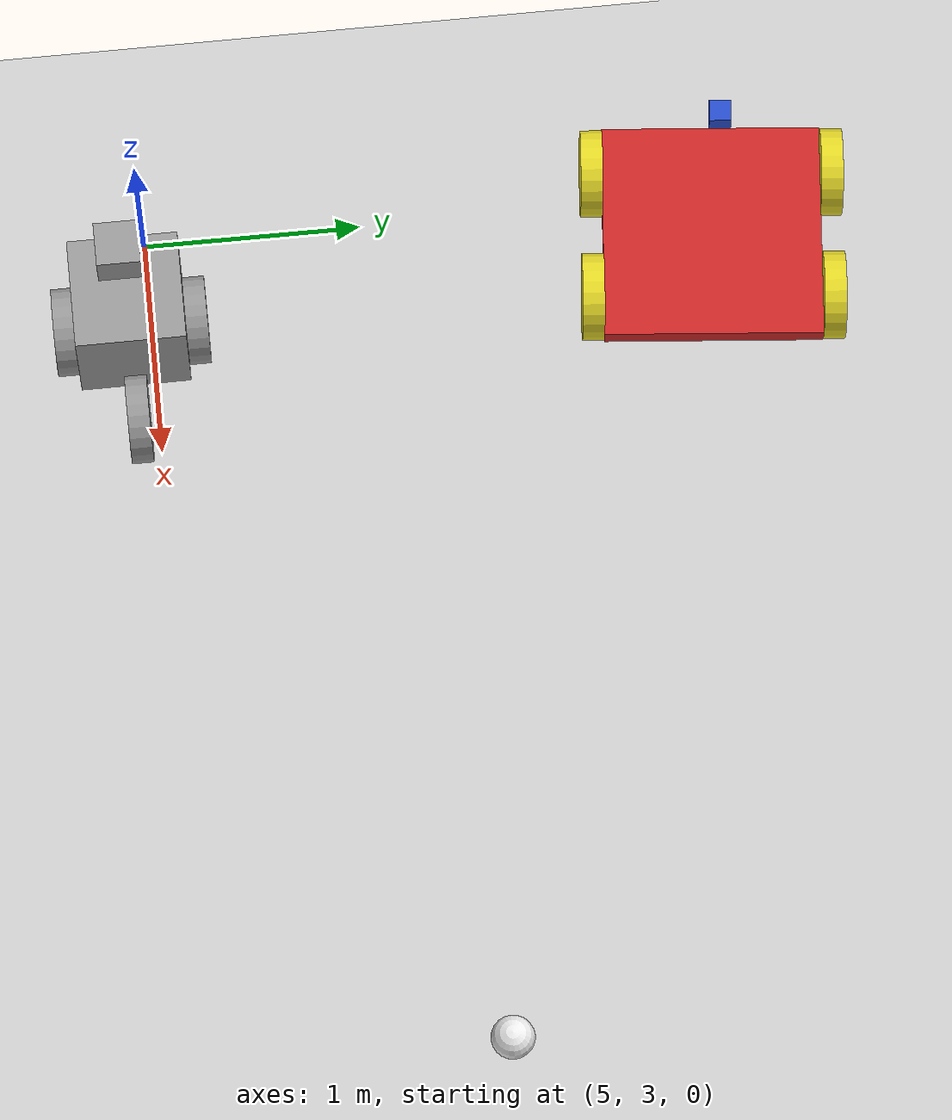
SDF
<sdf version="1.6">
 <world name="default">
  <model name="ground_plane">
   <static>1</static>
   <link name="link">
    <collision name="collision">
     <geometry><plane><normal>0 0 1</normal><size>100 100</size></plane></geometry>
     <surface>
      <contact><collide_bitmask>65535</collide_bitmask></contact>
      <friction><ode><mu>100</mu><mu2>50</mu2></ode></friction>
     </surface>
    </collision>
    <visual name="visual">
     <cast_shadows>0</cast_shadows>
     <geometry><plane><normal>0 0 1</normal><size>100 100</size></plane></geometry>
     <material>
      <script><uri>file://media/materials/scripts/gazebo.material</uri><name>Gazebo/Grey</name></script>
     </material>
    </visual>
   </link>
  </model>
  <model name="4wheelRobot">
   <link name="link_0">
    <pose>-0.091667 0.0075 -0.016667 0 -0 0</pose>
    <inertial>
     <mass>1</mass>
     <inertia>
      <ixx>0.166667</ixx>
      <ixy>0</ixy>
      <ixz>0</ixz>
      <iyy>0.166667</iyy>
      <iyz>0</iyz>
      <izz>0.166667</izz>
     </inertia>
    </inertial>
    <visual name="visual">
     <geometry><box><size>1 1 0.1</size></box></geometry>
     <material>
      <lighting>1</lighting>
      <script><uri>file://media/materials/scripts/gazebo.material</uri><name>Gazebo/Red</name></script>
      <shader type="pixel"><normal_map>__default__</normal_map></shader>
      <ambient>0.3 0.3 0.3 1</ambient>
      <diffuse>0.7 0.7 0.7 1</diffuse>
      <specular>0.01 0.01 0.01 1</specular>
      <emissive>0 0 0 1</emissive>
     </material>
    </visual>
    <collision name="collision">
     <geometry><box><size>1 1 0.1</size></box></geometry>
     <surface>
      <friction>
       <ode><mu>1</mu><mu2>1</mu2><fdir1>0 0 0</fdir1><slip1>0</slip1><slip2>0</slip2></ode>
       <torsional>
        <coefficient>1</coefficient>
        <patch_radius>0</patch_radius>
        <surface_radius>0</surface_radius>
        <use_patch_radius>1</use_patch_radius>
        <ode><slip>0</slip></ode>
       </torsional>
      </friction>
      <bounce><restitution_coefficient>0</restitution_coefficient><threshold>1e+06</threshold></bounce>
      <contact>
       <collide_without_contact>0</collide_without_contact>
       <collide_without_contact_bitmask>1</collide_without_contact_bitmask>
       <collide_bitmask>1</collide_bitmask>
       <ode>
        <soft_cfm>0</soft_cfm>
        <soft_erp>0.2</soft_erp>
        <kp>1e+13</kp>
        <kd>1</kd>
        <max_vel>0.01</max_vel>
        <min_depth>0</min_depth>
       </ode>
       <bullet>
        <split_impulse>1</split_impulse>
        <split_impulse_penetration_threshold>-0.01</split_impulse_penetration_threshold>
        <soft_cfm>0</soft_cfm>
        <soft_erp>0.2</soft_erp>
        <kp>1e+13</kp>
        <kd>1</kd>
       </bullet>
      </contact>
     </surface>
    </collision>
   </link>
   <link name="link_1">
    <pose>-0.391667 -0.542519 -0.016667 1.5707 -0 0</pose>
    <inertial>
     <mass>1</mass>
     <inertia><ixx>0.145833</ixx><ixy>0</ixy><ixz>0</ixz><iyy>0.145833</iyy><iyz>0</iyz><izz>0.125</izz></inertia>
    </inertial>
    <visual name="visual">
     <geometry><cylinder><radius>0.2</radius><length>0.1</length></cylinder></geometry>
     <material>
      <lighting>1</lighting>
      <script><uri>file://media/materials/scripts/gazebo.material</uri><name>Gazebo/Yellow</name></script>
      <shader type="pixel"><normal_map>__default__</normal_map></shader>
      <ambient>0.3 0.3 0.3 1</ambient>
      <diffuse>0.7 0.7 0.7 1</diffuse>
      <specular>0.01 0.01 0.01 1</specular>
      <emissive>0 0 0 1</emissive>
     </material>
    </visual>
    <collision name="collision">
     <geometry><cylinder><radius>0.2</radius><length>0.1</length></cylinder></geometry>
     <surface>
      <friction>
       <ode><mu>1</mu><mu2>1</mu2><fdir1>0 0 0</fdir1><slip1>0</slip1><slip2>0</slip2></ode>
       <torsional>
        <coefficient>1</coefficient>
        <patch_radius>0</patch_radius>
        <surface_radius>0</surface_radius>
        <use_patch_radius>1</use_patch_radius>
        <ode><slip>0</slip></ode>
       </torsional>
      </friction>
      <bounce><restitution_coefficient>0</restitution_coefficient><threshold>1e+06</threshold></bounce>
      <contact>
       <collide_without_contact>0</collide_without_contact>
       <collide_without_contact_bitmask>1</collide_without_contact_bitmask>
       <collide_bitmask>1</collide_bitmask>
       <ode>
        <soft_cfm>0</soft_cfm>
        <soft_erp>0.2</soft_erp>
        <kp>1e+13</kp>
        <kd>1</kd>
        <max_vel>0.01</max_vel>
        <min_depth>0</min_depth>
       </ode>
       <bullet>
        <split_impulse>1</split_impulse>
        <split_impulse_penetration_threshold>-0.01</split_impulse_penetration_threshold>
        <soft_cfm>0</soft_cfm>
        <soft_erp>0.2</soft_erp>
        <kp>1e+13</kp>
        <kd>1</kd>
       </bullet>
      </contact>
     </surface>
    </collision>
   </link>
   <link name="link_1_clone">
    <pose>-0.391667 0.557519 -0.016667 1.5707 -0 0</pose>
    <inertial>
     <mass>1</mass>
     <inertia><ixx>0.145833</ixx><ixy>0</ixy><ixz>0</ixz><iyy>0.145833</iyy><iyz>0</iyz><izz>0.125</izz></inertia>
    </inertial>
    <visual name="visual">
     <geometry><cylinder><radius>0.2</radius><length>0.1</length></cylinder></geometry>
     <material>
      <lighting>1</lighting>
      <script><uri>file://media/materials/scripts/gazebo.material</uri><name>Gazebo/Yellow</name></script>
      <shader type="pixel"><normal_map>__default__</normal_map></shader>
      <ambient>0.3 0.3 0.3 1</ambient>
      <diffuse>0.7 0.7 0.7 1</diffuse>
      <specular>0.01 0.01 0.01 1</specular>
      <emissive>0 0 0 1</emissive>
     </material>
    </visual>
    <collision name="collision">
     <geometry><cylinder><radius>0.2</radius><length>0.1</length></cylinder></geometry>
     <surface>
      <friction>
       <ode><mu>1</mu><mu2>1</mu2><fdir1>0 0 0</fdir1><slip1>0</slip1><slip2>0</slip2></ode>
       <torsional>
        <coefficient>1</coefficient>
        <patch_radius>0</patch_radius>
        <surface_radius>0</surface_radius>
        <use_patch_radius>1</use_patch_radius>
        <ode><slip>0</slip></ode>
       </torsional>
      </friction>
      <bounce><restitution_coefficient>0</restitution_coefficient><threshold>1e+06</threshold></bounce>
      <contact>
       <collide_without_contact>0</collide_without_contact>
       <collide_without_contact_bitmask>1</collide_without_contact_bitmask>
       <collide_bitmask>1</collide_bitmask>
       <ode>
        <soft_cfm>0</soft_cfm>
        <soft_erp>0.2</soft_erp>
        <kp>1e+13</kp>
        <kd>1</kd>
        <max_vel>0.01</max_vel>
        <min_depth>0</min_depth>
       </ode>
       <bullet>
        <split_impulse>1</split_impulse>
        <split_impulse_penetration_threshold>-0.01</split_impulse_penetration_threshold>
        <soft_cfm>0</soft_cfm>
        <soft_erp>0.2</soft_erp>
        <kp>1e+13</kp>
        <kd>1</kd>
       </bullet>
      </contact>
     </surface>
    </collision>
   </link>
   <link name="link_1_clone_0">
    <pose>0.208333 -0.542519 -0.016667 1.5707 -0 0</pose>
    <inertial>
     <mass>1</mass>
     <inertia><ixx>0.145833</ixx><ixy>0</ixy><ixz>0</ixz><iyy>0.145833</iyy><iyz>0</iyz><izz>0.125</izz></inertia>
    </inertial>
    <visual name="visual">
     <geometry><cylinder><radius>0.2</radius><length>0.1</length></cylinder></geometry>
     <material>
      <lighting>1</lighting>
      <script><uri>file://media/materials/scripts/gazebo.material</uri><name>Gazebo/Yellow</name></script>
      <shader type="pixel"><normal_map>__default__</normal_map></shader>
      <ambient>0.3 0.3 0.3 1</ambient>
      <diffuse>0.7 0.7 0.7 1</diffuse>
      <specular>0.01 0.01 0.01 1</specular>
      <emissive>0 0 0 1</emissive>
     </material>
    </visual>
    <collision name="collision">
     <geometry><cylinder><radius>0.2</radius><length>0.1</length></cylinder></geometry>
     <surface>
      <friction>
       <ode><mu>1</mu><mu2>1</mu2><fdir1>0 0 0</fdir1><slip1>0</slip1><slip2>0</slip2></ode>
       <torsional>
        <coefficient>1</coefficient>
        <patch_radius>0</patch_radius>
        <surface_radius>0</surface_radius>
        <use_patch_radius>1</use_patch_radius>
        <ode><slip>0</slip></ode>
       </torsional>
      </friction>
      <bounce><restitution_coefficient>0</restitution_coefficient><threshold>1e+06</threshold></bounce>
      <contact>
       <collide_without_contact>0</collide_without_contact>
       <collide_without_contact_bitmask>1</collide_without_contact_bitmask>
       <collide_bitmask>1</collide_bitmask>
       <ode>
        <soft_cfm>0</soft_cfm>
        <soft_erp>0.2</soft_erp>
        <kp>1e+13</kp>
        <kd>1</kd>
        <max_vel>0.01</max_vel>
        <min_depth>0</min_depth>
       </ode>
       <bullet>
        <split_impulse>1</split_impulse>
        <split_impulse_penetration_threshold>-0.01</split_impulse_penetration_threshold>
        <soft_cfm>0</soft_cfm>
        <soft_erp>0.2</soft_erp>
        <kp>1e+13</kp>
        <kd>1</kd>
       </bullet>
      </contact>
     </surface>
    </collision>
   </link>
   <link name="link_1_clone_1">
    <pose>0.208333 0.557519 -0.016667 1.5707 -0 0</pose>
    <inertial>
     <mass>1</mass>
     <inertia><ixx>0.145833</ixx><ixy>0</ixy><ixz>0</ixz><iyy>0.145833</iyy><iyz>0</iyz><izz>0.125</izz></inertia>
    </inertial>
    <visual name="visual">
     <geometry><cylinder><radius>0.2</radius><length>0.1</length></cylinder></geometry>
     <material>
      <lighting>1</lighting>
      <script><uri>file://media/materials/scripts/gazebo.material</uri><name>Gazebo/Yellow</name></script>
      <shader type="pixel"><normal_map>__default__</normal_map></shader>
      <ambient>0.3 0.3 0.3 1</ambient>
      <diffuse>0.7 0.7 0.7 1</diffuse>
      <specular>0.01 0.01 0.01 1</specular>
      <emissive>0 0 0 1</emissive>
     </material>
    </visual>
    <collision name="collision">
     <geometry><cylinder><radius>0.2</radius><length>0.1</length></cylinder></geometry>
     <surface>
      <friction>
       <ode><mu>1</mu><mu2>1</mu2><fdir1>0 0 0</fdir1><slip1>0</slip1><slip2>0</slip2></ode>
       <torsional>
        <coefficient>1</coefficient>
        <patch_radius>0</patch_radius>
        <surface_radius>0</surface_radius>
        <use_patch_radius>1</use_patch_radius>
        <ode><slip>0</slip></ode>
       </torsional>
      </friction>
      <bounce><restitution_coefficient>0</restitution_coefficient><threshold>1e+06</threshold></bounce>
      <contact>
       <collide_without_contact>0</collide_without_contact>
       <collide_without_contact_bitmask>1</collide_without_contact_bitmask>
       <collide_bitmask>1</collide_bitmask>
       <ode>
        <soft_cfm>0</soft_cfm>
        <soft_erp>0.2</soft_erp>
        <kp>1e+13</kp>
        <kd>1</kd>
        <max_vel>0.01</max_vel>
        <min_depth>0</min_depth>
       </ode>
       <bullet>
        <split_impulse>1</split_impulse>
        <split_impulse_penetration_threshold>-0.01</split_impulse_penetration_threshold>
        <soft_cfm>0</soft_cfm>
        <soft_erp>0.2</soft_erp>
        <kp>1e+13</kp>
        <kd>1</kd>
       </bullet>
      </contact>
     </surface>
    </collision>
   </link>
   <link name="link_2">
    <pose>0.458333 -0.0375 0.083333 0 -0 0</pose>
    <inertial>
     <mass>1</mass>
     <inertia>
      <ixx>0.166667</ixx>
      <ixy>0</ixy>
      <ixz>0</ixz>
      <iyy>0.166667</iyy>
      <iyz>0</iyz>
      <izz>0.166667</izz>
     </inertia>
    </inertial>
    <visual name="visual">
     <geometry><box><size>0.1 0.1 0.1</size></box></geometry>
     <material>
      <lighting>1</lighting>
      <script><uri>file://media/materials/scripts/gazebo.material</uri><name>Gazebo/Blue</name></script>
      <shader type="pixel"><normal_map>__default__</normal_map></shader>
      <ambient>0.3 0.3 0.3 1</ambient>
      <diffuse>0.7 0.7 0.7 1</diffuse>
      <specular>0.01 0.01 0.01 1</specular>
      <emissive>0 0 0 1</emissive>
     </material>
    </visual>
    <collision name="collision">
     <geometry><box><size>0.1 0.1 0.1</size></box></geometry>
     <surface>
      <friction>
       <ode><mu>1</mu><mu2>1</mu2><fdir1>0 0 0</fdir1><slip1>0</slip1><slip2>0</slip2></ode>
       <torsional>
        <coefficient>1</coefficient>
        <patch_radius>0</patch_radius>
        <surface_radius>0</surface_radius>
        <use_patch_radius>1</use_patch_radius>
        <ode><slip>0</slip></ode>
       </torsional>
      </friction>
      <bounce><restitution_coefficient>0</restitution_coefficient><threshold>1e+06</threshold></bounce>
      <contact>
       <collide_without_contact>0</collide_without_contact>
       <collide_without_contact_bitmask>1</collide_without_contact_bitmask>
       <collide_bitmask>1</collide_bitmask>
       <ode>
        <soft_cfm>0</soft_cfm>
        <soft_erp>0.2</soft_erp>
        <kp>1e+13</kp>
        <kd>1</kd>
        <max_vel>0.01</max_vel>
        <min_depth>0</min_depth>
       </ode>
       <bullet>
        <split_impulse>1</split_impulse>
        <split_impulse_penetration_threshold>-0.01</split_impulse_penetration_threshold>
        <soft_cfm>0</soft_cfm>
        <soft_erp>0.2</soft_erp>
        <kp>1e+13</kp>
        <kd>1</kd>
       </bullet>
      </contact>
     </surface>
    </collision>
   </link>
   <joint name="base2LFwheel" type="revolute">
    <parent>link_0</parent>
    <child>link_1</child>
    <axis>
     <xyz>0 0 1</xyz>
     <use_parent_model_frame>0</use_parent_model_frame>
     <limit>
      <lower>-1.79769e+308</lower>
      <upper>1.79769e+308</upper>
      <effort>-1</effort>
      <velocity>-1</velocity>
     </limit>
     <dynamics>
      <spring_reference>0</spring_reference>
      <spring_stiffness>0</spring_stiffness>
      <damping>0</damping>
      <friction>0</friction>
     </dynamics>
    </axis>
    <physics>
     <ode><limit><cfm>0</cfm><erp>0.2</erp></limit><suspension><cfm>0</cfm><erp>0.2</erp></suspension></ode>
    </physics>
   </joint>
   <joint name="base2RFwheel" type="revolute">
    <parent>link_0</parent>
    <child>link_1_clone</child>
    <axis>
     <xyz>0 0 1</xyz>
     <use_parent_model_frame>0</use_parent_model_frame>
     <limit>
      <lower>-1.79769e+308</lower>
      <upper>1.79769e+308</upper>
      <effort>-1</effort>
      <velocity>-1</velocity>
     </limit>
     <dynamics>
      <spring_reference>0</spring_reference>
      <spring_stiffness>0</spring_stiffness>
      <damping>0</damping>
      <friction>0</friction>
     </dynamics>
    </axis>
    <physics>
     <ode><limit><cfm>0</cfm><erp>0.2</erp></limit><suspension><cfm>0</cfm><erp>0.2</erp></suspension></ode>
    </physics>
   </joint>
   <joint name="base2LBwheel" type="revolute">
    <parent>link_0</parent>
    <child>link_1_clone_0</child>
    <axis>
     <xyz>0 0 1</xyz>
     <use_parent_model_frame>0</use_parent_model_frame>
     <limit>
      <lower>-1.79769e+308</lower>
      <upper>1.79769e+308</upper>
      <effort>-1</effort>
      <velocity>-1</velocity>
     </limit>
     <dynamics>
      <spring_reference>0</spring_reference>
      <spring_stiffness>0</spring_stiffness>
      <damping>0</damping>
      <friction>0</friction>
     </dynamics>
    </axis>
    <physics>
     <ode><limit><cfm>0</cfm><erp>0.2</erp></limit><suspension><cfm>0</cfm><erp>0.2</erp></suspension></ode>
    </physics>
   </joint>
   <joint name="base2RBwheel" type="revolute">
    <parent>link_0</parent>
    <child>link_1_clone_1</child>
    <axis>
     <xyz>0 0 1</xyz>
     <use_parent_model_frame>0</use_parent_model_frame>
     <limit>
      <lower>-1.79769e+308</lower>
      <upper>1.79769e+308</upper>
      <effort>-1</effort>
      <velocity>-1</velocity>
     </limit>
     <dynamics>
      <spring_reference>0</spring_reference>
      <spring_stiffness>0</spring_stiffness>
      <damping>0</damping>
      <friction>0</friction>
     </dynamics>
    </axis>
    <physics>
     <ode><limit><cfm>0</cfm><erp>0.2</erp></limit><suspension><cfm>0</cfm><erp>0.2</erp></suspension></ode>
    </physics>
   </joint>
   <joint name="link_0_JOINT_5" type="revolute">
    <parent>link_0</parent>
    <child>link_2</child>
    <axis>
     <xyz>1 0 0</xyz>
     <use_parent_model_frame>0</use_parent_model_frame>
     <limit>
      <lower>-1.79769e+308</lower>
      <upper>1.79769e+308</upper>
      <effort>-1</effort>
      <velocity>-1</velocity>
     </limit>
     <dynamics>
      <spring_reference>0</spring_reference>
      <spring_stiffness>0</spring_stiffness>
      <damping>0</damping>
     </dynamics>
    </axis>
    <physics>
     <ode><limit><cfm>0</cfm><erp>0.2</erp></limit><suspension><cfm>0</cfm><erp>0.2</erp></suspension></ode>
    </physics>
   </joint>
   <static>0</static>
   <pose>5.17324 5.61366 0.21667 0 -7e-06 3.05399</pose>
  </model>
  <model name="3wheelsRobot">
   <link name="link_2">
    <pose>-0.06 0.004 0.04 0 -0 0</pose>
    <inertial>
     <mass>1</mass>
     <inertia>
      <ixx>0.166667</ixx>
      <ixy>0</ixy>
      <ixz>0</ixz>
      <iyy>0.166667</iyy>
      <iyz>0</iyz>
      <izz>0.166667</izz>
     </inertia>
    </inertial>
    <visual name="visual">
     <geometry><box><size>0.5 0.5 0.6</size></box></geometry>
     <material>
      <lighting>1</lighting>
      <script><uri>file://media/materials/scripts/gazebo.material</uri><name>Gazebo/Grey</name></script>
      <shader type="pixel"><normal_map>__default__</normal_map></shader>
      <ambient>0.3 0.3 0.3 1</ambient>
      <diffuse>0.7 0.7 0.7 1</diffuse>
      <specular>0.01 0.01 0.01 1</specular>
      <emissive>0 0 0 1</emissive>
     </material>
    </visual>
    <collision name="collision">
     <geometry><box><size>0.5 0.5 0.6</size></box></geometry>
     <surface>
      <friction>
       <ode><mu>1</mu><mu2>1</mu2><fdir1>0 0 0</fdir1><slip1>0</slip1><slip2>0</slip2></ode>
       <torsional>
        <coefficient>1</coefficient>
        <patch_radius>0</patch_radius>
        <surface_radius>0</surface_radius>
        <use_patch_radius>1</use_patch_radius>
        <ode><slip>0</slip></ode>
       </torsional>
      </friction>
      <bounce><restitution_coefficient>0</restitution_coefficient><threshold>1e+06</threshold></bounce>
      <contact>
       <collide_without_contact>0</collide_without_contact>
       <collide_without_contact_bitmask>1</collide_without_contact_bitmask>
       <collide_bitmask>1</collide_bitmask>
       <ode>
        <soft_cfm>0</soft_cfm>
        <soft_erp>0.2</soft_erp>
        <kp>1e+13</kp>
        <kd>1</kd>
        <max_vel>0.01</max_vel>
        <min_depth>0</min_depth>
       </ode>
       <bullet>
        <split_impulse>1</split_impulse>
        <split_impulse_penetration_threshold>-0.01</split_impulse_penetration_threshold>
        <soft_cfm>0</soft_cfm>
        <soft_erp>0.2</soft_erp>
        <kp>1e+13</kp>
        <kd>1</kd>
       </bullet>
      </contact>
     </surface>
    </collision>
   </link>
   <link name="link_3">
    <pose>-0.06 -0.296019 -0.16 1.5707 -0 0</pose>
    <inertial>
     <mass>1</mass>
     <inertia><ixx>0.145833</ixx><ixy>0</ixy><ixz>0</ixz><iyy>0.145833</iyy><iyz>0</iyz><izz>0.125</izz></inertia>
    </inertial>
    <visual name="visual">
     <geometry><cylinder><radius>0.2</radius><length>0.1</length></cylinder></geometry>
     <material>
      <lighting>1</lighting>
      <script><uri>file://media/materials/scripts/gazebo.material</uri><name>Gazebo/Grey</name></script>
      <shader type="pixel"><normal_map>__default__</normal_map></shader>
      <ambient>0.3 0.3 0.3 1</ambient>
      <diffuse>0.7 0.7 0.7 1</diffuse>
      <specular>0.01 0.01 0.01 1</specular>
      <emissive>0 0 0 1</emissive>
     </material>
    </visual>
    <collision name="collision">
     <geometry><cylinder><radius>0.2</radius><length>0.1</length></cylinder></geometry>
     <surface>
      <friction>
       <ode><mu>1</mu><mu2>1</mu2><fdir1>0 0 0</fdir1><slip1>0</slip1><slip2>0</slip2></ode>
       <torsional>
        <coefficient>1</coefficient>
        <patch_radius>0</patch_radius>
        <surface_radius>0</surface_radius>
        <use_patch_radius>1</use_patch_radius>
        <ode><slip>0</slip></ode>
       </torsional>
      </friction>
      <bounce><restitution_coefficient>0</restitution_coefficient><threshold>1e+06</threshold></bounce>
      <contact>
       <collide_without_contact>0</collide_without_contact>
       <collide_without_contact_bitmask>1</collide_without_contact_bitmask>
       <collide_bitmask>1</collide_bitmask>
       <ode>
        <soft_cfm>0</soft_cfm>
        <soft_erp>0.2</soft_erp>
        <kp>1e+13</kp>
        <kd>1</kd>
        <max_vel>0.01</max_vel>
        <min_depth>0</min_depth>
       </ode>
       <bullet>
        <split_impulse>1</split_impulse>
        <split_impulse_penetration_threshold>-0.01</split_impulse_penetration_threshold>
        <soft_cfm>0</soft_cfm>
        <soft_erp>0.2</soft_erp>
        <kp>1e+13</kp>
        <kd>1</kd>
       </bullet>
      </contact>
     </surface>
    </collision>
   </link>
   <link name="link_3_clone">
    <pose>-0.06 0.304019 -0.16 1.5707 -0 0</pose>
    <inertial>
     <mass>1</mass>
     <inertia><ixx>0.145833</ixx><ixy>0</ixy><ixz>0</ixz><iyy>0.145833</iyy><iyz>0</iyz><izz>0.125</izz></inertia>
    </inertial>
    <visual name="visual">
     <geometry><cylinder><radius>0.2</radius><length>0.1</length></cylinder></geometry>
     <material>
      <lighting>1</lighting>
      <script><uri>file://media/materials/scripts/gazebo.material</uri><name>Gazebo/Grey</name></script>
      <shader type="pixel"><normal_map>__default__</normal_map></shader>
      <ambient>0.3 0.3 0.3 1</ambient>
      <diffuse>0.7 0.7 0.7 1</diffuse>
      <specular>0.01 0.01 0.01 1</specular>
      <emissive>0 0 0 1</emissive>
     </material>
    </visual>
    <collision name="collision">
     <geometry><cylinder><radius>0.2</radius><length>0.1</length></cylinder></geometry>
     <surface>
      <friction>
       <ode><mu>1</mu><mu2>1</mu2><fdir1>0 0 0</fdir1><slip1>0</slip1><slip2>0</slip2></ode>
       <torsional>
        <coefficient>1</coefficient>
        <patch_radius>0</patch_radius>
        <surface_radius>0</surface_radius>
        <use_patch_radius>1</use_patch_radius>
        <ode><slip>0</slip></ode>
       </torsional>
      </friction>
      <bounce><restitution_coefficient>0</restitution_coefficient><threshold>1e+06</threshold></bounce>
      <contact>
       <collide_without_contact>0</collide_without_contact>
       <collide_without_contact_bitmask>1</collide_without_contact_bitmask>
       <collide_bitmask>1</collide_bitmask>
       <ode>
        <soft_cfm>0</soft_cfm>
        <soft_erp>0.2</soft_erp>
        <kp>1e+13</kp>
        <kd>1</kd>
        <max_vel>0.01</max_vel>
        <min_depth>0</min_depth>
       </ode>
       <bullet>
        <split_impulse>1</split_impulse>
        <split_impulse_penetration_threshold>-0.01</split_impulse_penetration_threshold>
        <soft_cfm>0</soft_cfm>
        <soft_erp>0.2</soft_erp>
        <kp>1e+13</kp>
        <kd>1</kd>
       </bullet>
      </contact>
     </surface>
    </collision>
   </link>
   <link name="link_3_clone_0">
    <pose>0.39 0.004 -0.16 1.5707 -0 0</pose>
    <inertial>
     <mass>1</mass>
     <inertia><ixx>0.145833</ixx><ixy>0</ixy><ixz>0</ixz><iyy>0.145833</iyy><iyz>0</iyz><izz>0.125</izz></inertia>
    </inertial>
    <visual name="visual">
     <geometry><cylinder><radius>0.2</radius><length>0.1</length></cylinder></geometry>
     <material>
      <lighting>1</lighting>
      <script><uri>file://media/materials/scripts/gazebo.material</uri><name>Gazebo/Grey</name></script>
      <shader type="pixel"><normal_map>__default__</normal_map></shader>
      <ambient>0.3 0.3 0.3 1</ambient>
      <diffuse>0.7 0.7 0.7 1</diffuse>
      <specular>0.01 0.01 0.01 1</specular>
      <emissive>0 0 0 1</emissive>
     </material>
    </visual>
    <collision name="collision">
     <geometry><cylinder><radius>0.2</radius><length>0.1</length></cylinder></geometry>
     <surface>
      <friction>
       <ode><mu>1</mu><mu2>1</mu2><fdir1>0 0 0</fdir1><slip1>0</slip1><slip2>0</slip2></ode>
       <torsional>
        <coefficient>1</coefficient>
        <patch_radius>0</patch_radius>
        <surface_radius>0</surface_radius>
        <use_patch_radius>1</use_patch_radius>
        <ode><slip>0</slip></ode>
       </torsional>
      </friction>
      <bounce><restitution_coefficient>0</restitution_coefficient><threshold>1e+06</threshold></bounce>
      <contact>
       <collide_without_contact>0</collide_without_contact>
       <collide_without_contact_bitmask>1</collide_without_contact_bitmask>
       <collide_bitmask>1</collide_bitmask>
       <ode>
        <soft_cfm>0</soft_cfm>
        <soft_erp>0.2</soft_erp>
        <kp>1e+13</kp>
        <kd>1</kd>
        <max_vel>0.01</max_vel>
        <min_depth>0</min_depth>
       </ode>
       <bullet>
        <split_impulse>1</split_impulse>
        <split_impulse_penetration_threshold>-0.01</split_impulse_penetration_threshold>
        <soft_cfm>0</soft_cfm>
        <soft_erp>0.2</soft_erp>
        <kp>1e+13</kp>
        <kd>1</kd>
       </bullet>
      </contact>
     </surface>
    </collision>
   </link>
   <link name="link_6">
    <pose>-0.21 -0.016 0.44 0 -0 0</pose>
    <inertial>
     <mass>1</mass>
     <inertia>
      <ixx>0.166667</ixx>
      <ixy>0</ixy>
      <ixz>0</ixz>
      <iyy>0.166667</iyy>
      <iyz>0</iyz>
      <izz>0.166667</izz>
     </inertia>
    </inertial>
    <visual name="visual">
     <geometry><box><size>0.2 0.2 0.2</size></box></geometry>
     <material>
      <lighting>1</lighting>
      <script><uri>file://media/materials/scripts/gazebo.material</uri><name>Gazebo/Grey</name></script>
      <shader type="pixel"><normal_map>__default__</normal_map></shader>
      <ambient>0.3 0.3 0.3 1</ambient>
      <diffuse>0.7 0.7 0.7 1</diffuse>
      <specular>0.01 0.01 0.01 1</specular>
      <emissive>0 0 0 1</emissive>
     </material>
    </visual>
    <collision name="collision">
     <geometry><box><size>0.2 0.2 0.2</size></box></geometry>
     <surface>
      <friction>
       <ode><mu>1</mu><mu2>1</mu2><fdir1>0 0 0</fdir1><slip1>0</slip1><slip2>0</slip2></ode>
       <torsional>
        <coefficient>1</coefficient>
        <patch_radius>0</patch_radius>
        <surface_radius>0</surface_radius>
        <use_patch_radius>1</use_patch_radius>
        <ode><slip>0</slip></ode>
       </torsional>
      </friction>
      <bounce><restitution_coefficient>0</restitution_coefficient><threshold>1e+06</threshold></bounce>
      <contact>
       <collide_without_contact>0</collide_without_contact>
       <collide_without_contact_bitmask>1</collide_without_contact_bitmask>
       <collide_bitmask>1</collide_bitmask>
       <ode>
        <soft_cfm>0</soft_cfm>
        <soft_erp>0.2</soft_erp>
        <kp>1e+13</kp>
        <kd>1</kd>
        <max_vel>0.01</max_vel>
        <min_depth>0</min_depth>
       </ode>
       <bullet>
        <split_impulse>1</split_impulse>
        <split_impulse_penetration_threshold>-0.01</split_impulse_penetration_threshold>
        <soft_cfm>0</soft_cfm>
        <soft_erp>0.2</soft_erp>
        <kp>1e+13</kp>
        <kd>1</kd>
       </bullet>
      </contact>
     </surface>
    </collision>
   </link>
   <joint name="link_2_JOINT_0" type="revolute">
    <parent>link_2</parent>
    <child>link_3</child>
    <axis>
     <xyz>0 0 1</xyz>
     <use_parent_model_frame>0</use_parent_model_frame>
     <limit>
      <lower>-1.79769e+308</lower>
      <upper>1.79769e+308</upper>
      <effort>-1</effort>
      <velocity>-1</velocity>
     </limit>
     <dynamics>
      <spring_reference>0</spring_reference>
      <spring_stiffness>0</spring_stiffness>
      <damping>0</damping>
     </dynamics>
    </axis>
    <physics>
     <ode><limit><cfm>0</cfm><erp>0.2</erp></limit><suspension><cfm>0</cfm><erp>0.2</erp></suspension></ode>
    </physics>
   </joint>
   <joint name="link_2_JOINT_1" type="revolute">
    <parent>link_2</parent>
    <child>link_3_clone</child>
    <pose>0 0 0 -0.02 0 0</pose>
    <axis>
     <xyz>0 0 1</xyz>
     <use_parent_model_frame>0</use_parent_model_frame>
     <limit>
      <lower>-1.79769e+308</lower>
      <upper>1.79769e+308</upper>
      <effort>-1</effort>
      <velocity>-1</velocity>
     </limit>
     <dynamics>
      <spring_reference>0</spring_reference>
      <spring_stiffness>0</spring_stiffness>
      <damping>0</damping>
     </dynamics>
    </axis>
    <physics>
     <ode><limit><cfm>0</cfm><erp>0.2</erp></limit><suspension><cfm>0</cfm><erp>0.2</erp></suspension></ode>
    </physics>
   </joint>
   <joint name="link_2_JOINT_2" type="revolute">
    <parent>link_2</parent>
    <child>link_3_clone_0</child>
    <axis>
     <xyz>0 0 1</xyz>
     <use_parent_model_frame>0</use_parent_model_frame>
     <limit>
      <lower>-1.79769e+308</lower>
      <upper>1.79769e+308</upper>
      <effort>-1</effort>
      <velocity>-1</velocity>
     </limit>
     <dynamics>
      <spring_reference>0</spring_reference>
      <spring_stiffness>0</spring_stiffness>
      <damping>0</damping>
     </dynamics>
    </axis>
    <physics>
     <ode><limit><cfm>0</cfm><erp>0.2</erp></limit><suspension><cfm>0</cfm><erp>0.2</erp></suspension></ode>
    </physics>
   </joint>
   <joint name="link_2_JOINT_3" type="revolute">
    <parent>link_2</parent>
    <child>link_6</child>
    <axis>
     <xyz>0 0 1</xyz>
     <use_parent_model_frame>0</use_parent_model_frame>
     <limit>
      <lower>-1.79769e+308</lower>
      <upper>1.79769e+308</upper>
      <effort>-1</effort>
      <velocity>-1</velocity>
     </limit>
     <dynamics>
      <spring_reference>0</spring_reference>
      <spring_stiffness>0</spring_stiffness>
      <damping>0</damping>
     </dynamics>
    </axis>
    <physics>
     <ode><limit><cfm>0</cfm><erp>0.2</erp></limit><suspension><cfm>0</cfm><erp>0.2</erp></suspension></ode>
    </physics>
   </joint>
   <static>0</static>
   <pose>5.5116 2.90756 0.36 0 -0 0</pose>
  </model>
  <model name="my_ball">
   <link name="link_0">
    <inertial>
     <mass>1</mass>
     <inertia><ixx>0.1</ixx><ixy>0</ixy><ixz>0</ixz><iyy>0.1</iyy><iyz>0</iyz><izz>0.1</izz></inertia>
    </inertial>
    <visual name="visual">
     <geometry><sphere><radius>0.1</radius></sphere></geometry>
     <material>
      <lighting>1</lighting>
      <script><uri>file://media/materials/scripts/gazebo.material</uri><name>Gazebo/White</name></script>
      <shader type="pixel"><normal_map>__default__</normal_map></shader>
      <ambient>1 1 1 1</ambient>
      <diffuse>1 1 1 1</diffuse>
      <specular>1 1 1 1</specular>
      <emissive>1 1 1 1</emissive>
     </material>
    </visual>
    <collision name="collision">
     <geometry><sphere><radius>0.1</radius></sphere></geometry>
     <surface>
      <friction>
       <ode><mu>1</mu><mu2>1</mu2><fdir1>0 0 0</fdir1><slip1>0</slip1><slip2>0</slip2></ode>
       <torsional>
        <coefficient>1</coefficient>
        <patch_radius>0</patch_radius>
        <surface_radius>0</surface_radius>
        <use_patch_radius>1</use_patch_radius>
        <ode><slip>0</slip></ode>
       </torsional>
      </friction>
      <bounce><restitution_coefficient>0</restitution_coefficient><threshold>1e+06</threshold></bounce>
      <contact>
       <collide_without_contact>0</collide_without_contact>
       <collide_without_contact_bitmask>1</collide_without_contact_bitmask>
       <collide_bitmask>1</collide_bitmask>
       <ode>
        <soft_cfm>0</soft_cfm>
        <soft_erp>0.2</soft_erp>
        <kp>1e+13</kp>
        <kd>1</kd>
        <max_vel>0.01</max_vel>
        <min_depth>0</min_depth>
       </ode>
       <bullet>
        <split_impulse>1</split_impulse>
        <split_impulse_penetration_threshold>-0.01</split_impulse_penetration_threshold>
        <soft_cfm>0</soft_cfm>
        <soft_erp>0.2</soft_erp>
        <kp>1e+13</kp>
        <kd>1</kd>
       </bullet>
      </contact>
     </surface>
    </collision>
   </link>
   <static>0</static>
   <pose>8.88618 4.32054 0 0 -0 0</pose>
  </model>
 </world>
</sdf>
